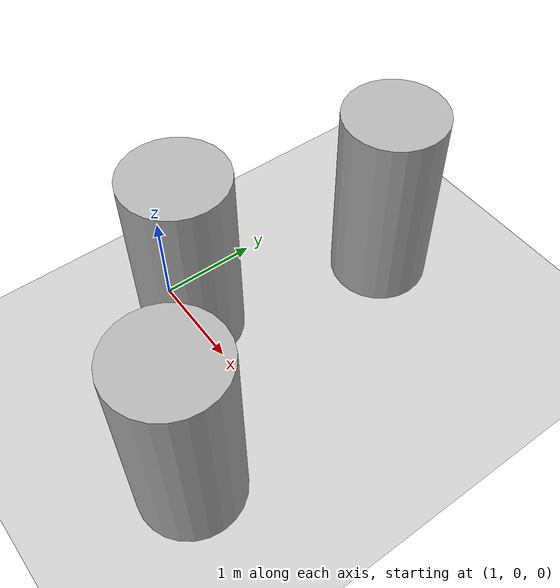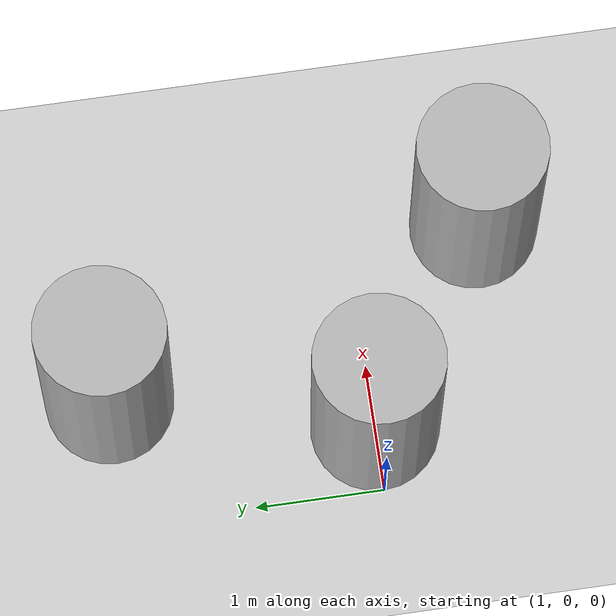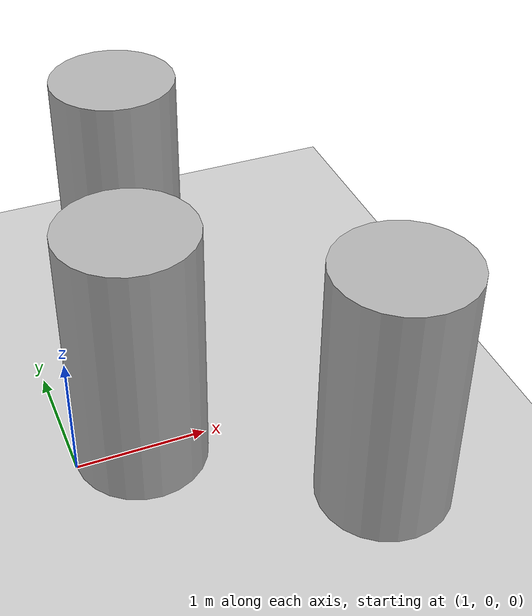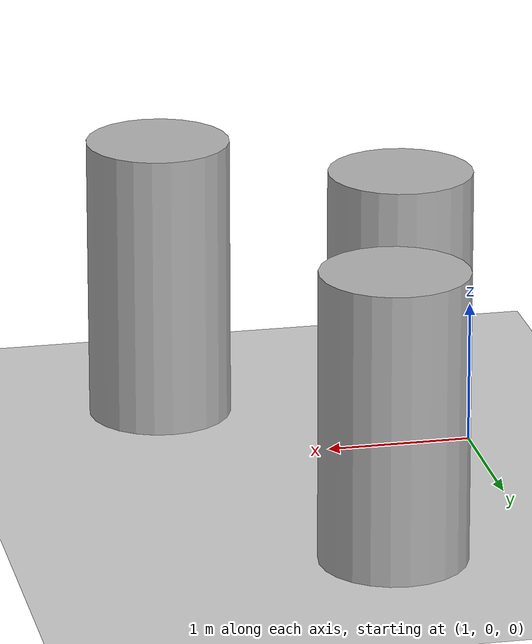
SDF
<sdf version='1.10'>
  <world name='simple_test'>
    <physics type='ode'>
      <max_step_size>0.0040000000000000001</max_step_size>
      <real_time_factor>1</real_time_factor>
      <real_time_update_rate>250</real_time_update_rate>
    </physics>
    <plugin name='gz::sim::systems::Physics' filename='gz-sim-physics-system'/>
    <plugin name='gz::sim::systems::UserCommands' filename='gz-sim-user-commands-system'/>
    <plugin name='gz::sim::systems::SceneBroadcaster' filename='gz-sim-scene-broadcaster-system'/>
    <plugin name='gz::sim::systems::Contact' filename='gz-sim-contact-system'/>
    <plugin name='gz::sim::systems::Imu' filename='gz-sim-imu-system'/>
    <plugin name='gz::sim::systems::AirPressure' filename='gz-sim-air-pressure-system'/>
    <plugin name='gz::sim::systems::Sensors' filename='gz-sim-sensors-system'>
      <render_engine>ogre2</render_engine>
    </plugin>
    <gui fullscreen='false'>
      <plugin name='3D View' filename='GzScene3D'>
        <gz-gui>
          <title>3D View</title>
          <property type='bool' key='showTitleBar'>0</property>
          <property type='string' key='state'>docked</property>
        </gz-gui>
        <engine>ogre2</engine>
        <scene>scene</scene>
        <ambient_light>0.5984631152222222 0.5984631152222222 0.5984631152222222</ambient_light>
        <background_color>0.8984631152222222 0.8984631152222222 0.8984631152222222</background_color>
        <camera_pose>-6 0 6 0 0.5 0</camera_pose>
      </plugin>
      <plugin name='World control' filename='WorldControl'>
        <gz-gui>
          <title>World control</title>
          <property type='bool' key='showTitleBar'>0</property>
          <property type='bool' key='resizable'>0</property>
          <property type='double' key='height'>72</property>
          <property type='double' key='width'>121</property>
          <property type='double' key='z'>1</property>
          <property type='string' key='state'>floating</property>
          <anchors target='3D View'>
            <line own='left' target='left'/>
            <line own='bottom' target='bottom'/>
          </anchors>
        </gz-gui>
        <play_pause>1</play_pause>
        <step>1</step>
        <start_paused>1</start_paused>
      </plugin>
      <plugin name='World stats' filename='WorldStats'>
        <gz-gui>
          <title>World stats</title>
          <property type='bool' key='showTitleBar'>0</property>
          <property type='bool' key='resizable'>0</property>
          <property type='double' key='height'>110</property>
          <property type='double' key='width'>290</property>
          <property type='double' key='z'>1</property>
          <property type='string' key='state'>floating</property>
          <anchors target='3D View'>
            <line own='right' target='right'/>
            <line own='bottom' target='bottom'/>
          </anchors>
        </gz-gui>
        <sim_time>1</sim_time>
        <real_time>1</real_time>
        <real_time_factor>1</real_time_factor>
        <iterations>1</iterations>
      </plugin>
      <plugin name='Entity tree' filename='EntityTree'/>
    </gui>
    <gravity>0 0 -9.8000000000000007</gravity>
    <magnetic_field>6.0000000000000002e-06 2.3e-05 -4.1999999999999998e-05</magnetic_field>
    <atmosphere type='adiabatic'/>
    <scene>
      <grid>false</grid>
      <ambient>0.400000006 0.400000006 0.400000006 1</ambient>
      <background>0.699999988 0.699999988 0.699999988 1</background>
      <shadows>true</shadows>
    </scene>
    <model name='ground_plane'>
      <static>true</static>
      <link name='link'>
        <collision name='collision'>
          <geometry>
            <plane>
              <normal>0 0 1</normal>
              <size>1 1</size>
            </plane>
          </geometry>
          <surface>
            <friction>
              <ode/>
            </friction>
            <bounce/>
            <contact/>
          </surface>
        </collision>
        <visual name='visual'>
          <geometry>
            <plane>
              <normal>0 0 1</normal>
              <size>100 100</size>
            </plane>
          </geometry>
          <material>
            <ambient>0.800000012 0.800000012 0.800000012 1</ambient>
            <diffuse>0.800000012 0.800000012 0.800000012 1</diffuse>
            <specular>0.800000012 0.800000012 0.800000012 1</specular>
          </material>
        </visual>
        <pose>0 0 0 0 0 0</pose>
        <inertial>
          <pose>0 0 0 0 0 0</pose>
          <mass>1</mass>
          <inertia>
            <ixx>1</ixx>
            <ixy>0</ixy>
            <ixz>0</ixz>
            <iyy>1</iyy>
            <iyz>0</iyz>
            <izz>1</izz>
          </inertia>
        </inertial>
        <enable_wind>false</enable_wind>
      </link>
      <pose>0 0 0 0 0 0</pose>
      <self_collide>false</self_collide>
    </model>
    <model name='cylinder'>
      <pose>1.5 0 1 0 0 0</pose>
      <link name='cylinder_link'>
        <inertial>
          <inertia>
            <ixx>0.14580000000000001</ixx>
            <ixy>0</ixy>
            <ixz>0</ixz>
            <iyy>0.14580000000000001</iyy>
            <iyz>0</iyz>
            <izz>0.125</izz>
          </inertia>
          <mass>1</mass>
          <pose>0 0 0 0 0 0</pose>
        </inertial>
        <collision name='cylinder_collision'>
          <geometry>
            <cylinder>
              <radius>0.5</radius>
              <length>2</length>
            </cylinder>
          </geometry>
          <surface>
            <friction>
              <ode/>
            </friction>
            <bounce/>
            <contact/>
          </surface>
        </collision>
        <visual name='cylinder_visual'>
          <geometry>
            <cylinder>
              <radius>0.5</radius>
              <length>2</length>
            </cylinder>
          </geometry>
          <material>
            <ambient>0.300000012 0.300000012 0.300000012 1</ambient>
            <diffuse>0.699999988 0.699999988 0.699999988 1</diffuse>
            <specular>1 1 1 1</specular>
          </material>
        </visual>
        <pose>0 0 0 0 0 0</pose>
        <enable_wind>false</enable_wind>
      </link>
      <static>false</static>
      <self_collide>false</self_collide>
    </model>
    <model name='cylinder_0'>
      <pose>2.0 2.0 1. 0 0 0</pose>
      <link name='cylinder_link'>
        <inertial>
          <inertia>
            <ixx>0.14580000000000001</ixx>
            <ixy>0</ixy>
            <ixz>0</ixz>
            <iyy>0.14580000000000001</iyy>
            <iyz>0</iyz>
            <izz>0.125</izz>
          </inertia>
          <mass>1</mass>
          <pose>0 0 0 0 0 0</pose>
        </inertial>
        <collision name='cylinder_collision'>
          <geometry>
            <cylinder>
              <radius>0.5</radius>
              <length>2</length>
            </cylinder>
          </geometry>
          <surface>
            <friction>
              <ode/>
            </friction>
            <bounce/>
            <contact/>
          </surface>
        </collision>
        <visual name='cylinder_visual'>
          <geometry>
            <cylinder>
              <radius>0.5</radius>
              <length>2</length>
            </cylinder>
          </geometry>
          <material>
            <ambient>0.300000012 0.300000012 0.300000012 1</ambient>
            <diffuse>0.699999988 0.699999988 0.699999988 1</diffuse>
            <specular>1 1 1 1</specular>
          </material>
        </visual>
        <pose>0 0 0 0 0 0</pose>
        <enable_wind>false</enable_wind>
      </link>
      <static>false</static>
      <self_collide>false</self_collide>
    </model>
    <model name='cylinder_1'>
      <pose>3. -1. 1 0 0 0</pose>
      <link name='cylinder_link'>
        <inertial>
          <inertia>
            <ixx>0.14580000000000001</ixx>
            <ixy>0</ixy>
            <ixz>0</ixz>
            <iyy>0.14580000000000001</iyy>
            <iyz>0</iyz>
            <izz>0.125</izz>
          </inertia>
          <mass>1</mass>
          <pose>0 0 0 0 0 0</pose>
        </inertial>
        <collision name='cylinder_collision'>
          <geometry>
            <cylinder>
              <radius>0.5</radius>
              <length>2</length>
            </cylinder>
          </geometry>
          <surface>
            <friction>
              <ode/>
            </friction>
            <bounce/>
            <contact/>
          </surface>
        </collision>
        <visual name='cylinder_visual'>
          <geometry>
            <cylinder>
              <radius>0.5</radius>
              <length>2</length>
            </cylinder>
          </geometry>
          <material>
            <ambient>0.300000012 0.300000012 0.300000012 1</ambient>
            <diffuse>0.699999988 0.699999988 0.699999988 1</diffuse>
            <specular>1 1 1 1</specular>
          </material>
        </visual>
        <pose>0 0 0 0 0 0</pose>
        <enable_wind>false</enable_wind>
      </link>
      <static>false</static>
      <self_collide>false</self_collide>
    </model>
    <light name='sunUTC' type='directional'>
      <pose>0 0 500 0 0 0</pose>
      <cast_shadows>true</cast_shadows>
      <intensity>1</intensity>
      <direction>0.001 0.625 -0.78000000000000003</direction>
      <diffuse>0.903999984 0.903999984 0.903999984 1</diffuse>
      <specular>0.270999998 0.270999998 0.270999998 1</specular>
      <attenuation>
        <range>2000</range>
        <linear>0</linear>
        <constant>1</constant>
        <quadratic>0</quadratic>
      </attenuation>
      <spot>
        <inner_angle>0</inner_angle>
        <outer_angle>0</outer_angle>
        <falloff>0</falloff>
      </spot>
    </light>
  </world>
</sdf>
